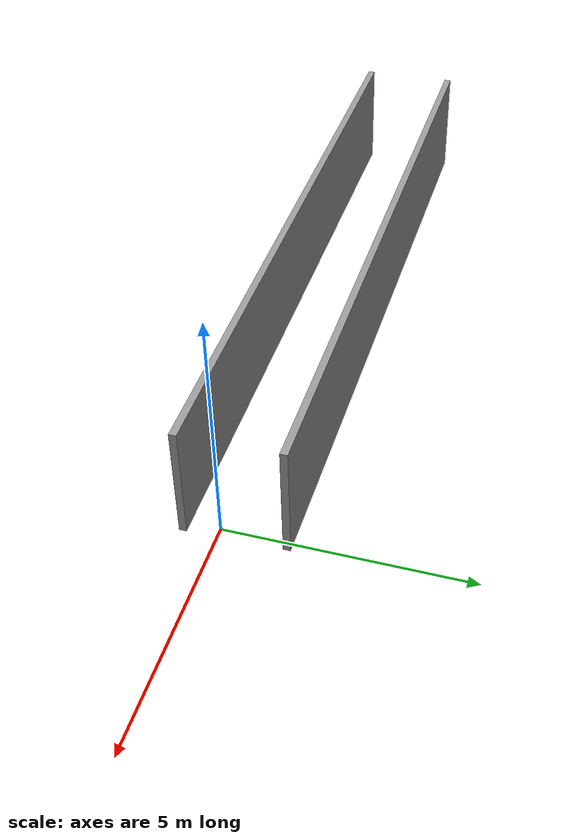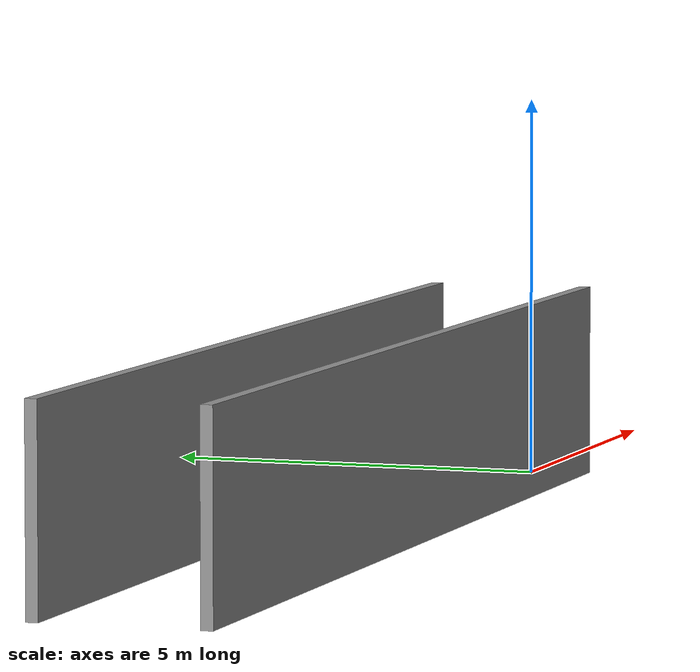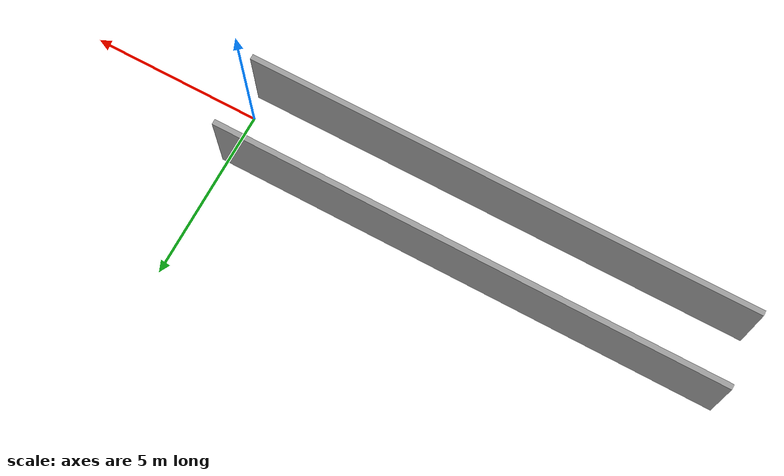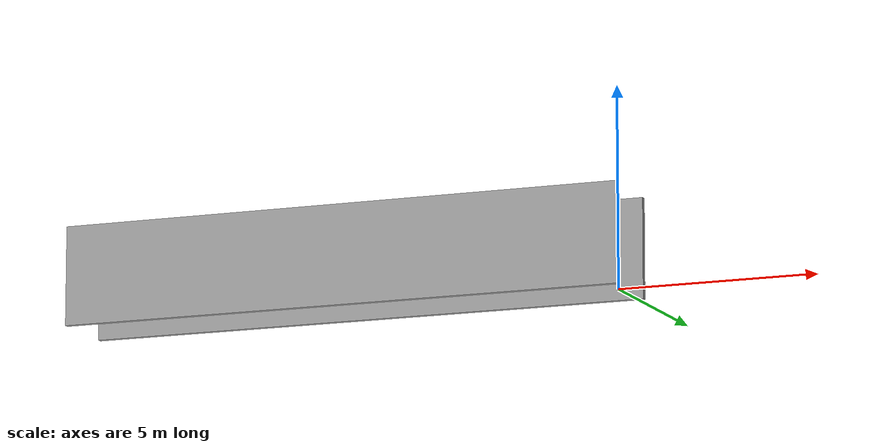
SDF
<?xml version='1.0'?>
<sdf version='1.6'>
  <model name='korytarz_bez_drzwi'>
    <pose frame=''>-7.05861 0.344612 0 0 -0 0</pose>
    <link name='Wall_0'>
      <collision name='Wall_0_Collision'>
        <geometry>
          <box>
            <size>14.5 0.15 2.5</size>
          </box>
        </geometry>
        <pose frame=''>0 0 1.25 0 -0 0</pose>
      </collision>
      <visual name='Wall_0_Visual'>
        <pose frame=''>0 0 1.25 0 -0 0</pose>
        <geometry>
          <box>
            <size>14.5 0.15 2.5</size>
          </box>
        </geometry>
        <material>
          <script>
            <uri>file://media/materials/scripts/gazebo.material</uri>
            <name>Gazebo/Grey</name>
          </script>
          <ambient>1 1 1 1</ambient>
        </material>
        <meta>
          <layer>0</layer>
        </meta>
      </visual>
      <pose frame=''>-0.031616 1.02148 0 0 -0 0</pose>
    </link>
    <link name='Wall_2'>
      <collision name='Wall_2_Collision'>
        <geometry>
          <box>
            <size>14.5 0.15 2.5</size>
          </box>
        </geometry>
        <pose frame=''>0 0 1.25 0 -0 0</pose>
      </collision>
      <visual name='Wall_2_Visual'>
        <pose frame=''>0 0 1.25 0 -0 0</pose>
        <geometry>
          <box>
            <size>14.5 0.15 2.5</size>
          </box>
        </geometry>
        <material>
          <script>
            <uri>file://media/materials/scripts/gazebo.material</uri>
            <name>Gazebo/Grey</name>
          </script>
          <ambient>1 1 1 1</ambient>
        </material>
        <meta>
          <layer>0</layer>
        </meta>
      </visual>
      <pose frame=''>0.031616 -1.02148 0 0 -0 0</pose>
    </link>
    <static>1</static>
  </model>
</sdf>
